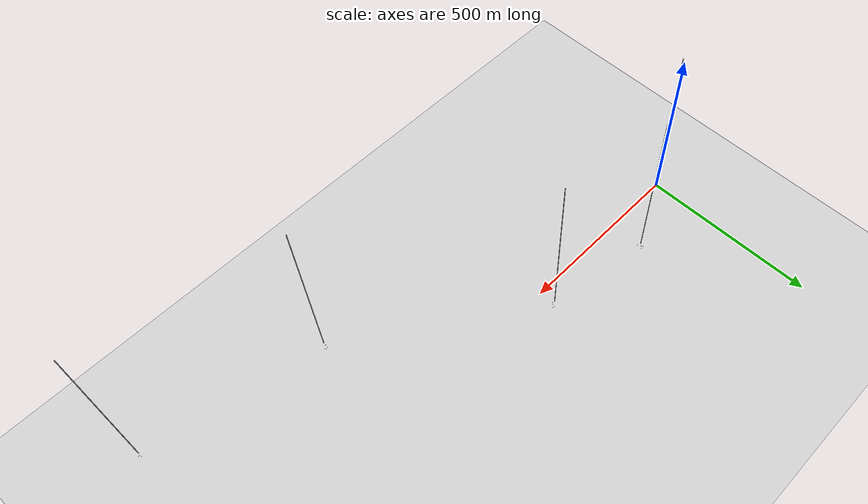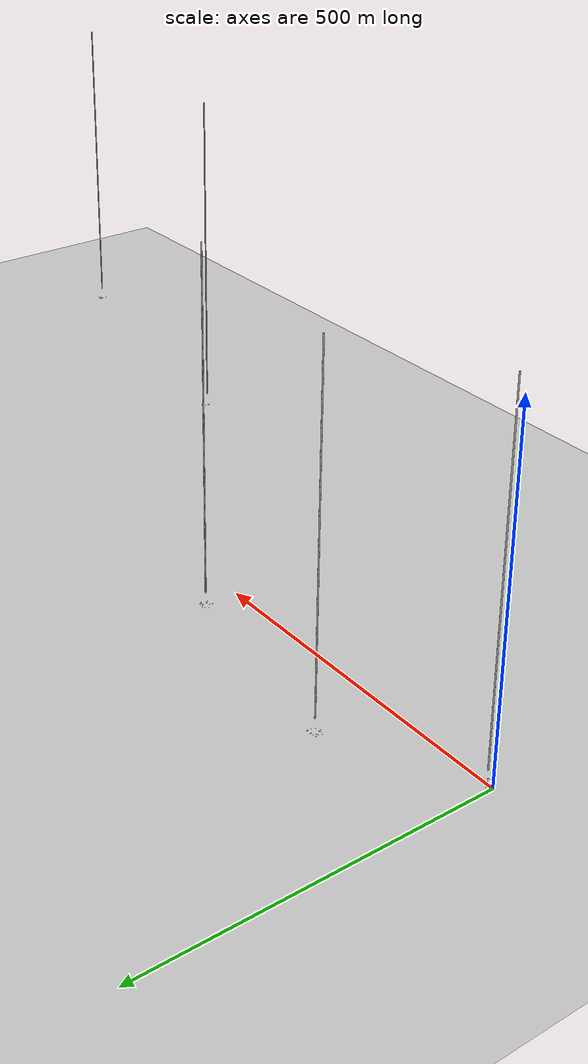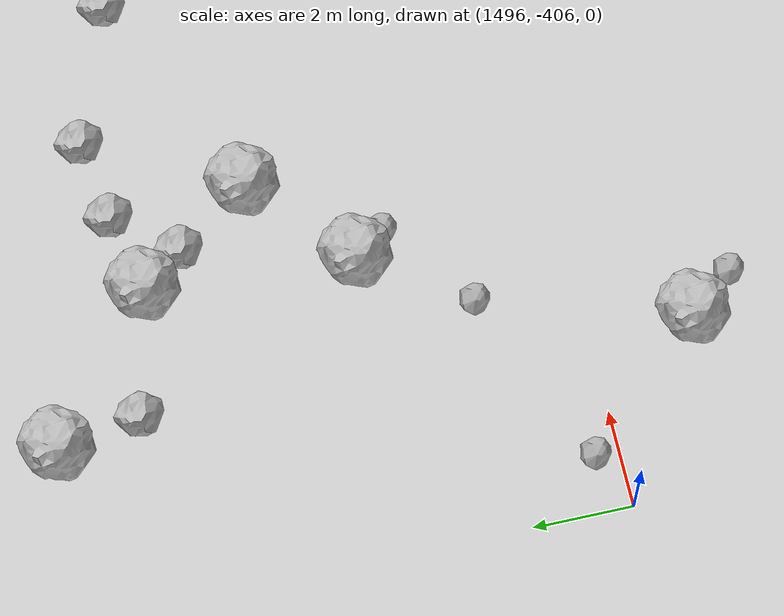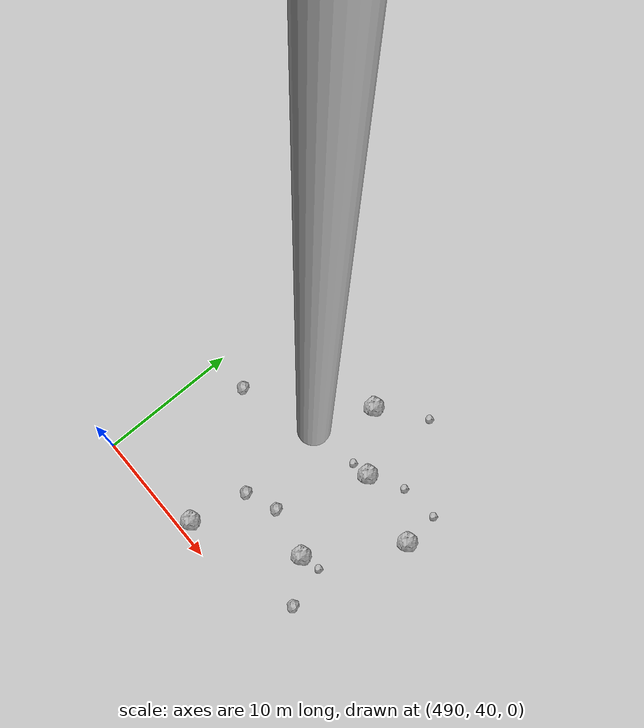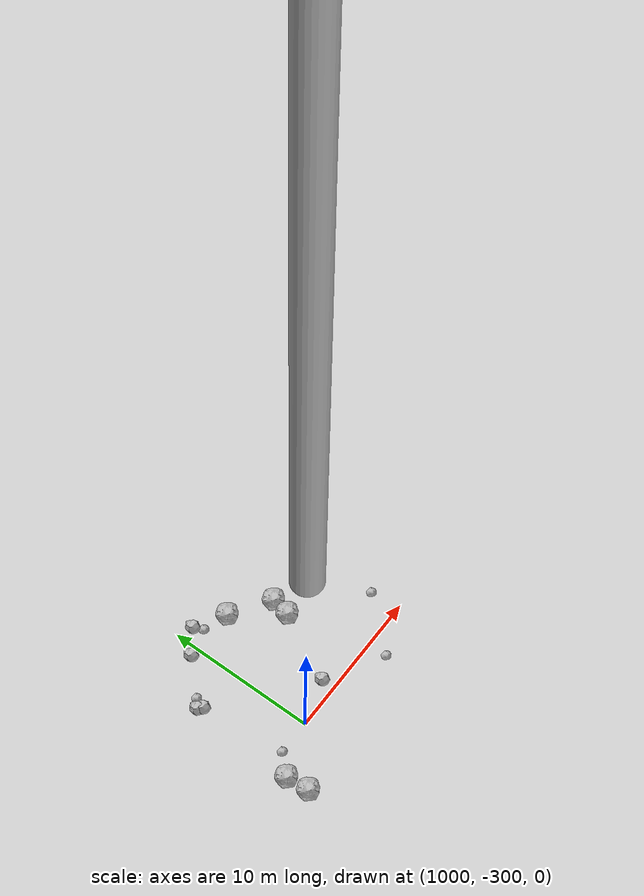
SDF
<?xml version="1.0" ?>
<sdf version="1.6">
  <world name="default">

    <include>
      <uri>model://custom_ground</uri>
    </include>

    <include>
      <uri>model://sun</uri>
    </include>

    <spherical_coordinates>
      <surface_model>EARTH_WGS84</surface_model>
      <latitude_deg>38.161479</latitude_deg>
      <longitude_deg>-122.454630</longitude_deg>
      <elevation>488.0</elevation>
      <heading_deg>90</heading_deg>
    </spherical_coordinates>

    <model name="rock1_0_0">
      <include>
        <uri>model://rock1</uri>
        <pose>6.616243362544267 5.475367138932707 0.5 0 0 0</pose>
      </include>
    </model>
    <model name="rock1_0_1">
      <include>
        <uri>model://rock1</uri>
        <pose>13.16446287164508 -8.90366457240589 0.5 0 0 0</pose>
      </include>
    </model>
    <model name="rock1_0_2">
      <include>
        <uri>model://rock1</uri>
        <pose>16.6027701646135 -2.461445358325345 0.5 0 0 0</pose>
      </include>
    </model>
    <model name="rock1_0_3">
      <include>
        <uri>model://rock1</uri>
        <pose>16.010781421886897 -7.1242670810145015 0.5 0 0 0</pose>
      </include>
    </model>
    <model name="rock1_0_4">
      <include>
        <uri>model://rock1</uri>
        <pose>4.914362871916758 -6.391579572275776 0.5 0 0 0</pose>
      </include>
    </model>
    <model name="rock2_0_0">
      <include>
        <uri>model://rock2</uri>
        <pose>16.749511526814736 -3.403174735293872 0.3 0 0 0</pose>
      </include>
    </model>
    <model name="rock2_0_1">
      <include>
        <uri>model://rock2</uri>
        <pose>9.861469021427967 -6.319771484204447 0.3 0 0 0</pose>
      </include>
    </model>
    <model name="rock2_0_2">
      <include>
        <uri>model://rock2</uri>
        <pose>2.2876182068870965 6.120942900154681 0.3 0 0 0</pose>
      </include>
    </model>
    <model name="rock2_0_3">
      <include>
        <uri>model://rock2</uri>
        <pose>7.441496539526497 -6.327208181810144 0.3 0 0 0</pose>
      </include>
    </model>
    <model name="rock2_0_4">
      <include>
        <uri>model://rock2</uri>
        <pose>14.148085970758375 -2.652244393996151 0.3 0 0 0</pose>
      </include>
    </model>
    <model name="rock3_0_0">
      <include>
        <uri>model://rock3</uri>
        <pose>15.421321545294571 3.301240721797665 0.2 0 0 0</pose>
      </include>
    </model>
    <model name="rock3_0_1">
      <include>
        <uri>model://rock3</uri>
        <pose>13.31006230689766 -4.042804991987941 0.2 0 0 0</pose>
      </include>
    </model>
    <model name="rock3_0_2">
      <include>
        <uri>model://rock3</uri>
        <pose>8.89390526434633 -2.34699631085852 0.2 0 0 0</pose>
      </include>
    </model>
    <model name="rock3_0_3">
      <include>
        <uri>model://rock3</uri>
        <pose>5.02296595396192 3.0503701240470793 0.2 0 0 0</pose>
      </include>
    </model>
    <model name="rock3_0_4">
      <include>
        <uri>model://rock3</uri>
        <pose>4.767570472798555 3.243053580537694 0.2 0 0 0</pose>
      </include>
    </model>
    <model name="rock1_1_0">
      <include>
        <uri>model://rock1</uri>
        <pose>195.11428520596766 101.25217492767257 0.5 0 0 0</pose>
      </include>
    </model>
    <model name="rock1_1_1">
      <include>
        <uri>model://rock1</uri>
        <pose>207.09710526740074 100.27908296314861 0.5 0 0 0</pose>
      </include>
    </model>
    <model name="rock1_1_2">
      <include>
        <uri>model://rock1</uri>
        <pose>197.96705628197984 94.6279493848451 0.5 0 0 0</pose>
      </include>
    </model>
    <model name="rock1_1_3">
      <include>
        <uri>model://rock1</uri>
        <pose>206.87277225073433 105.77087235475449 0.5 0 0 0</pose>
      </include>
    </model>
    <model name="rock1_1_4">
      <include>
        <uri>model://rock1</uri>
        <pose>200.24941930489678 105.81320205821885 0.5 0 0 0</pose>
      </include>
    </model>
    <model name="rock2_1_0">
      <include>
        <uri>model://rock2</uri>
        <pose>196.55557238600883 105.49087653901034 0.3 0 0 0</pose>
      </include>
    </model>
    <model name="rock2_1_1">
      <include>
        <uri>model://rock2</uri>
        <pose>199.43437664537413 91.13099296882957 0.3 0 0 0</pose>
      </include>
    </model>
    <model name="rock2_1_2">
      <include>
        <uri>model://rock2</uri>
        <pose>193.32428786623393 99.77652163101018 0.3 0 0 0</pose>
      </include>
    </model>
    <model name="rock2_1_3">
      <include>
        <uri>model://rock2</uri>
        <pose>191.36750079689136 104.52659387594991 0.3 0 0 0</pose>
      </include>
    </model>
    <model name="rock2_1_4">
      <include>
        <uri>model://rock2</uri>
        <pose>191.91260442360667 95.32323980124677 0.3 0 0 0</pose>
      </include>
    </model>
    <model name="rock3_1_0">
      <include>
        <uri>model://rock3</uri>
        <pose>200.95504047568159 93.47204487353612 0.2 0 0 0</pose>
      </include>
    </model>
    <model name="rock3_1_1">
      <include>
        <uri>model://rock3</uri>
        <pose>200.74485730070595 94.34084992397513 0.2 0 0 0</pose>
      </include>
    </model>
    <model name="rock3_1_2">
      <include>
        <uri>model://rock3</uri>
        <pose>196.24255724159866 93.62352970274995 0.2 0 0 0</pose>
      </include>
    </model>
    <model name="rock3_1_3">
      <include>
        <uri>model://rock3</uri>
        <pose>193.33221783827264 104.02542228253499 0.2 0 0 0</pose>
      </include>
    </model>
    <model name="rock3_1_4">
      <include>
        <uri>model://rock3</uri>
        <pose>205.26712991621224 94.55780826130855 0.2 0 0 0</pose>
      </include>
    </model>
    <model name="rock1_2_0">
      <include>
        <uri>model://rock1</uri>
        <pose>504.5049545422367 45.39675942624375 0.5 0 0 0</pose>
      </include>
    </model>
    <model name="rock1_2_1">
      <include>
        <uri>model://rock1</uri>
        <pose>503.0410385831004 52.63499021939257 0.5 0 0 0</pose>
      </include>
    </model>
    <model name="rock1_2_2">
      <include>
        <uri>model://rock1</uri>
        <pose>497.6874366714796 40.910345242579126 0.5 0 0 0</pose>
      </include>
    </model>
    <model name="rock1_2_3">
      <include>
        <uri>model://rock1</uri>
        <pose>508.4742745383454 51.76217672221096 0.5 0 0 0</pose>
      </include>
    </model>
    <model name="rock1_2_4">
      <include>
        <uri>model://rock1</uri>
        <pose>499.60667425352744 56.03177304257303 0.5 0 0 0</pose>
      </include>
    </model>
    <model name="rock2_2_0">
      <include>
        <uri>model://rock2</uri>
        <pose>496.0927294164985 54.157143341121746 0.3 0 0 0</pose>
      </include>
    </model>
    <model name="rock2_2_1">
      <include>
        <uri>model://rock2</uri>
        <pose>500.8221619535998 46.11203227706105 0.3 0 0 0</pose>
      </include>
    </model>
    <model name="rock2_2_2">
      <include>
        <uri>model://rock2</uri>
        <pose>498.5726677306668 45.20049390930209 0.3 0 0 0</pose>
      </include>
    </model>
    <model name="rock2_2_3">
      <include>
        <uri>model://rock2</uri>
        <pose>506.837146198541 42.75141509617864 0.3 0 0 0</pose>
      </include>
    </model>
    <model name="rock2_2_4">
      <include>
        <uri>model://rock2</uri>
        <pose>492.6212579030392 49.73406387653467 0.3 0 0 0</pose>
      </include>
    </model>
    <model name="rock3_2_0">
      <include>
        <uri>model://rock3</uri>
        <pose>502.71921200357457 58.53154203406656 0.2 0 0 0</pose>
      </include>
    </model>
    <model name="rock3_2_1">
      <include>
        <uri>model://rock3</uri>
        <pose>501.73335265337823 52.35652160877821 0.2 0 0 0</pose>
      </include>
    </model>
    <model name="rock3_2_2">
      <include>
        <uri>model://rock3</uri>
        <pose>505.9493028865598 45.74019870910868 0.2 0 0 0</pose>
      </include>
    </model>
    <model name="rock3_2_3">
      <include>
        <uri>model://rock3</uri>
        <pose>505.41083467365297 54.001049055981596 0.2 0 0 0</pose>
      </include>
    </model>
    <model name="rock3_2_4">
      <include>
        <uri>model://rock3</uri>
        <pose>508.20966893893086 54.32671346346805 0.2 0 0 0</pose>
      </include>
    </model>
    <model name="rock1_3_0">
      <include>
        <uri>model://rock1</uri>
        <pose>996.5975057268998 -302.7759447272571 0.5 0 0 0</pose>
      </include>
    </model>
    <model name="rock1_3_1">
      <include>
        <uri>model://rock1</uri>
        <pose>1005.4831786490345 -293.46835446423034 0.5 0 0 0</pose>
      </include>
    </model>
    <model name="rock1_3_2">
      <include>
        <uri>model://rock1</uri>
        <pose>1002.9365004915335 -291.7518333364024 0.5 0 0 0</pose>
      </include>
    </model>
    <model name="rock1_3_3">
      <include>
        <uri>model://rock1</uri>
        <pose>996.4714932838526 -301.22848315488363 0.5 0 0 0</pose>
      </include>
    </model>
    <model name="rock1_3_4">
      <include>
        <uri>model://rock1</uri>
        <pose>1005.2398851337265 -294.7130463587115 0.5 0 0 0</pose>
      </include>
    </model>
    <model name="rock2_3_0">
      <include>
        <uri>model://rock2</uri>
        <pose>999.3958694058172 -291.5946256427958 0.3 0 0 0</pose>
      </include>
    </model>
    <model name="rock2_3_1">
      <include>
        <uri>model://rock2</uri>
        <pose>996.7836442712476 -294.091380392076 0.3 0 0 0</pose>
      </include>
    </model>
    <model name="rock2_3_2">
      <include>
        <uri>model://rock2</uri>
        <pose>997.0582901757507 -294.3277080508931 0.3 0 0 0</pose>
      </include>
    </model>
    <model name="rock2_3_3">
      <include>
        <uri>model://rock2</uri>
        <pose>1002.9663571045651 -299.0785443261287 0.3 0 0 0</pose>
      </include>
    </model>
    <model name="rock2_3_4">
      <include>
        <uri>model://rock2</uri>
        <pose>1000.9708698683161 -290.4906250313376 0.3 0 0 0</pose>
      </include>
    </model>
    <model name="rock3_3_0">
      <include>
        <uri>model://rock3</uri>
        <pose>1009.6158844445308 -298.047659887387 0.2 0 0 0</pose>
      </include>
    </model>
    <model name="rock3_3_1">
      <include>
        <uri>model://rock3</uri>
        <pose>997.3063886646208 -293.66086498596474 0.2 0 0 0</pose>
      </include>
    </model>
    <model name="rock3_3_2">
      <include>
        <uri>model://rock3</uri>
        <pose>997.6390540090938 -300.01345527180024 0.2 0 0 0</pose>
      </include>
    </model>
    <model name="rock3_3_3">
      <include>
        <uri>model://rock3</uri>
        <pose>1001.259387904231 -291.17283736916994 0.2 0 0 0</pose>
      </include>
    </model>
    <model name="rock3_3_4">
      <include>
        <uri>model://rock3</uri>
        <pose>1006.6425522093521 -301.33064020643747 0.2 0 0 0</pose>
      </include>
    </model>
    <model name="rock1_4_0">
      <include>
        <uri>model://rock1</uri>
        <pose>1499.5478319200872 -395.3973337656938 0.5 0 0 0</pose>
      </include>
    </model>
    <model name="rock1_4_1">
      <include>
        <uri>model://rock1</uri>
        <pose>1499.6390068151086 -408.0757297169185 0.5 0 0 0</pose>
      </include>
    </model>
    <model name="rock1_4_2">
      <include>
        <uri>model://rock1</uri>
        <pose>1502.2462496028982 -401.89026373786817 0.5 0 0 0</pose>
      </include>
    </model>
    <model name="rock1_4_3">
      <include>
        <uri>model://rock1</uri>
        <pose>1502.4714253418679 -397.6688795822082 0.5 0 0 0</pose>
      </include>
    </model>
    <model name="rock1_4_4">
      <include>
        <uri>model://rock1</uri>
        <pose>1504.2478860873443 -400.03773339537963 0.5 0 0 0</pose>
      </include>
    </model>
    <model name="rock2_4_0">
      <include>
        <uri>model://rock2</uri>
        <pose>1503.1286971812822 -398.5281545564484 0.3 0 0 0</pose>
      </include>
    </model>
    <model name="rock2_4_1">
      <include>
        <uri>model://rock2</uri>
        <pose>1505.8093496615436 -397.04922020928007 0.3 0 0 0</pose>
      </include>
    </model>
    <model name="rock2_4_2">
      <include>
        <uri>model://rock2</uri>
        <pose>1504.105832571429 -397.30884228032556 0.3 0 0 0</pose>
      </include>
    </model>
    <model name="rock2_4_3">
      <include>
        <uri>model://rock2</uri>
        <pose>1508.7349493441825 -398.07903330531155 0.3 0 0 0</pose>
      </include>
    </model>
    <model name="rock2_4_4">
      <include>
        <uri>model://rock2</uri>
        <pose>1499.8437393270954 -397.07897957319534 0.3 0 0 0</pose>
      </include>
    </model>
    <model name="rock3_4_0">
      <include>
        <uri>model://rock3</uri>
        <pose>1500.8047050736272 -404.01086997961556 0.2 0 0 0</pose>
      </include>
    </model>
    <model name="rock3_4_1">
      <include>
        <uri>model://rock3</uri>
        <pose>1502.6768897825507 -402.5579520742115 0.2 0 0 0</pose>
      </include>
    </model>
    <model name="rock3_4_2">
      <include>
        <uri>model://rock3</uri>
        <pose>1497.1528920737458 -405.53873221756754 0.2 0 0 0</pose>
      </include>
    </model>
    <model name="rock3_4_3">
      <include>
        <uri>model://rock3</uri>
        <pose>1494.429546015995 -400.28081907742194 0.2 0 0 0</pose>
      </include>
    </model>
    <model name="rock3_4_4">
      <include>
        <uri>model://rock3</uri>
        <pose>1500.3379360910699 -409.0505620975882 0.2 0 0 0</pose>
      </include>
    </model>

    <model name="cylinder_1">
      <static>true</static>
      <link name="link">
        <visual name="visual">
          <geometry>
            <cylinder>
              <radius>1</radius>
              <length>500</length>
            </cylinder>
          </geometry>
        </visual>
      </link>
      <pose>10 0 270 0 0 0</pose>
    </model>

    <model name="cylinder_2">
      <static>true</static>
      <link name="link">
        <visual name="visual">
          <geometry>
            <cylinder>
              <radius>1</radius>
              <length>500</length>
            </cylinder>
          </geometry>
        </visual>
      </link>
      <pose>200 100 270 0 0 0</pose>
    </model>

    <model name="cylinder_3">
      <static>true</static>
      <link name="link">
        <visual name="visual">
          <geometry>
            <cylinder>
              <radius>1</radius>
              <length>500</length>
            </cylinder>
          </geometry>
        </visual>
      </link>
      <pose>500 50 270 0 0 0</pose>
    </model>

    <model name="cylinder_4">
      <static>true</static>
      <link name="link">
        <visual name="visual">
          <geometry>
            <cylinder>
              <radius>1</radius>
              <length>500</length>
            </cylinder>
          </geometry>
        </visual>
      </link>
      <pose>1000 -300 270 0 0 0</pose>
    </model>

    <model name="cylinder_5">
      <static>true</static>
      <link name="link">
        <visual name="visual">
          <geometry>
            <cylinder>
              <radius>1</radius>
              <length>500</length>
            </cylinder>
          </geometry>
        </visual>
      </link>
      <pose>1500 -400 270 0 0 0</pose>
    </model>

  </world>
</sdf>

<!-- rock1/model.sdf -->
<sdf version="1.6">
  <model name="rock1">
    <static>true</static> <!-- Set to true if the model should not move -->
    <pose>0 0 0 0 0 0</pose>

    <!--z offset is 0.5 for full scale-->

    <link name="link">
      <collision name="rock1_collision">
        <geometry>
          <mesh>
            <uri>model://meshes/rock1.dae</uri>
          </mesh>
        </geometry>
      </collision>
      <visual name="rock1_visual">
        <geometry>
          <mesh>
            <uri>model://meshes/rock1.dae</uri>
          </mesh>
        </geometry>
        <material>
          <script>
            <uri>model://materials/scripts/sand_pebbles.material</uri>
            <name>custom_ground/Image</name>
          </script>
        </material>
      </visual>
    </link>
  </model>
</sdf>

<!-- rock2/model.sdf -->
<sdf version="1.6">
  <model name="rock2">
    <static>true</static> <!-- Set to true if the model should not move -->
    <pose>0 0 0 0 0 0</pose>

    <!--z offset is 0.3 for full scale-->

    <link name="link">
      <collision name="rock2_collision">
        <geometry>
          <mesh>
            <uri>model://meshes/rock2.dae</uri>
          </mesh>
        </geometry>
      </collision>
      <visual name="rock2_visual">
        <geometry>
          <mesh>
            <uri>model://meshes/rock2.dae</uri>
          </mesh>
        </geometry>
        <material>
          <script>
            <uri>model://materials/scripts/sand_pebbles.material</uri>
            <name>custom_ground/Image</name>
          </script>
        </material>
      </visual>
    </link>
  </model>
</sdf>

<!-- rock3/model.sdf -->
<sdf version="1.6">
  <model name="rock3">
    <static>true</static> <!-- Set to true if the model should not move -->
    <pose>0 0 0 0 0 0</pose>

    <!--z offset is 0.2 for full scale-->

    <link name="link">
      <collision name="rock3_collision">
        <geometry>
          <mesh>
            <uri>model://meshes/rock3.dae</uri>
          </mesh>
        </geometry>
      </collision>
      <visual name="rock3_visual">
        <geometry>
          <mesh>
            <uri>model://meshes/rock3.dae</uri>
          </mesh>
        </geometry>
        <material>
          <script>
            <uri>model://materials/scripts/sand_pebbles.material</uri>
            <name>custom_ground/Image</name>
          </script>
        </material>
      </visual>
    </link>
  </model>
</sdf>

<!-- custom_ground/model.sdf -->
<sdf version="1.6">
  <model name="custom_ground">
    <static>true</static> <!-- Ground is static and immovable -->
    <link name="ground_link">
      <pose>240 0 0 0 0 0</pose> <!-- Position and orientation relative to the world -->
      <!-- Visual Representation -->
      <visual name="ground_visual">
        <geometry>
          <plane>
            <normal>0 0 1</normal> <!-- Upward facing plane -->
            <size>500 500</size> <!-- Size of the plane -->
          </plane>
        </geometry>
        <material>
          <script>
            <uri>model://materials/scripts/sand_pebbles.material</uri>
            <name>custom_ground/Image</name>
          </script>
        </material>
      </visual>

      <!-- Collision Representation -->
      <collision name="ground_collision">
        <geometry>
          <plane>
            <normal>0 0 1</normal>
            <size>100 100</size>
          </plane>
        </geometry>
      </collision>

    </link>
  </model>
</sdf>
